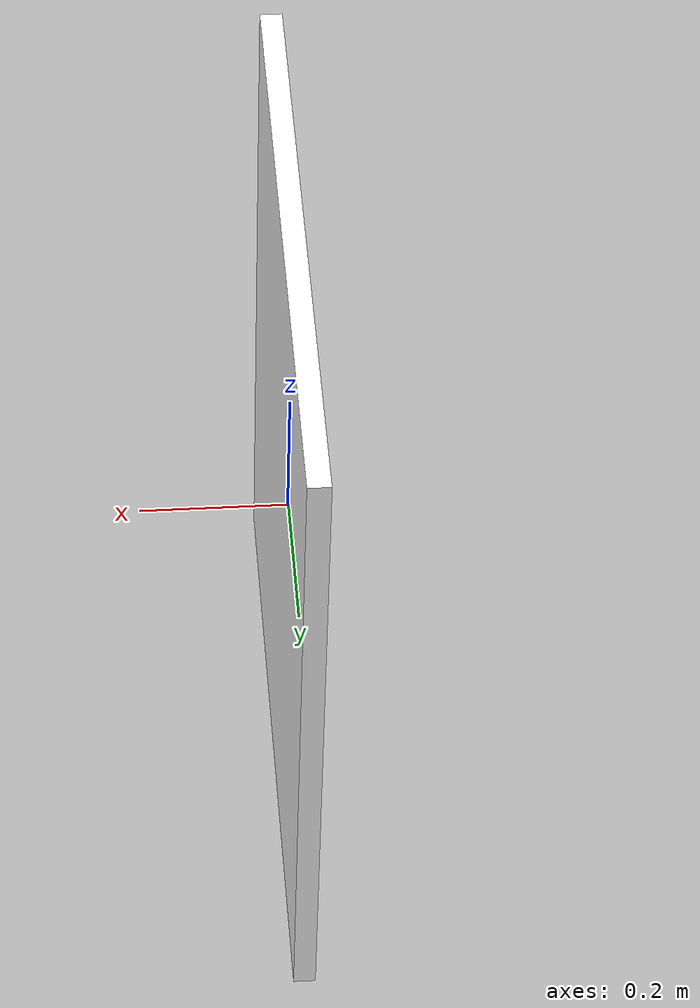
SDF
<?xml version="1.0"?>
<sdf version='1.4'>
  <model name='makerspet_poster'>
    <link name="link">
      <visual name="visual">
        <geometry>
          <box>
            <size>0.03 0.85714 1</size>
          </box>
        </geometry>
        <material>
          <pbr>
            <metal>
              <albedo_map>textures/makerspet_logo_600x700.png</albedo_map>
            <metalness>0.0</metalness><roughness>0.80</roughness>
            </metal>
          </pbr>
          <ambient>1 1 1 1</ambient>
          <diffuse>1 1 1 1</diffuse>
          <specular>1 1 1 1</specular>
          <emissive>0 0 0 1</emissive>
        </material>
      </visual>
    </link>
    <static>1</static>
    <allow_auto_disable>1</allow_auto_disable>
  </model>
</sdf>
